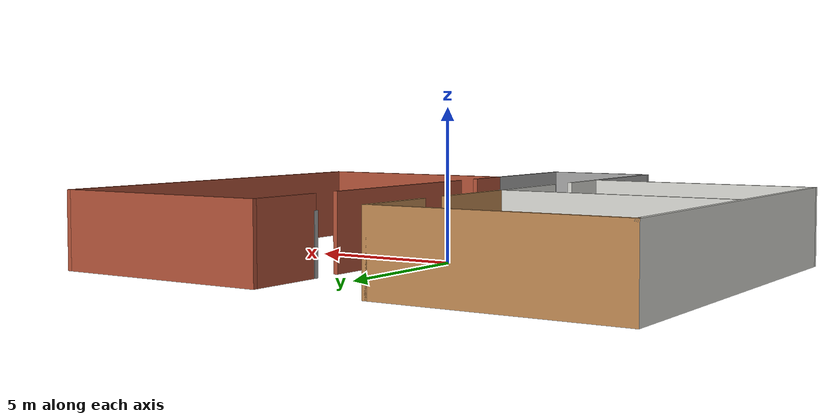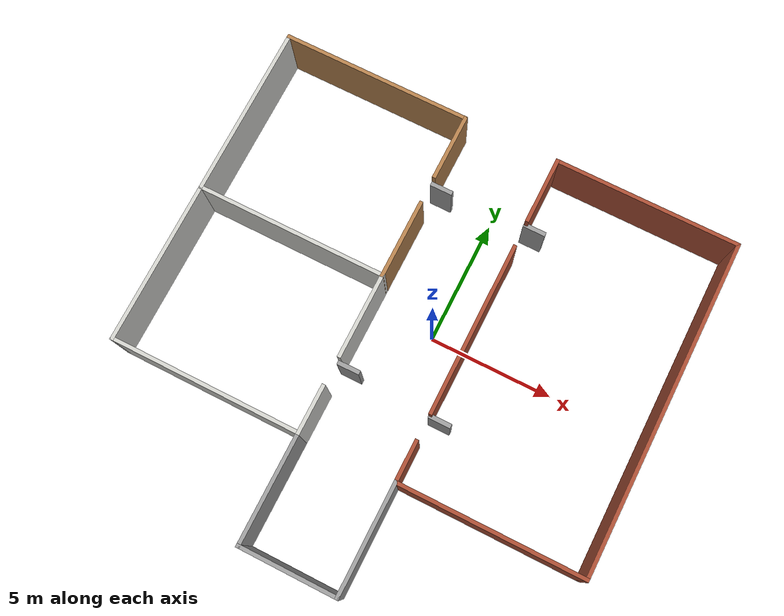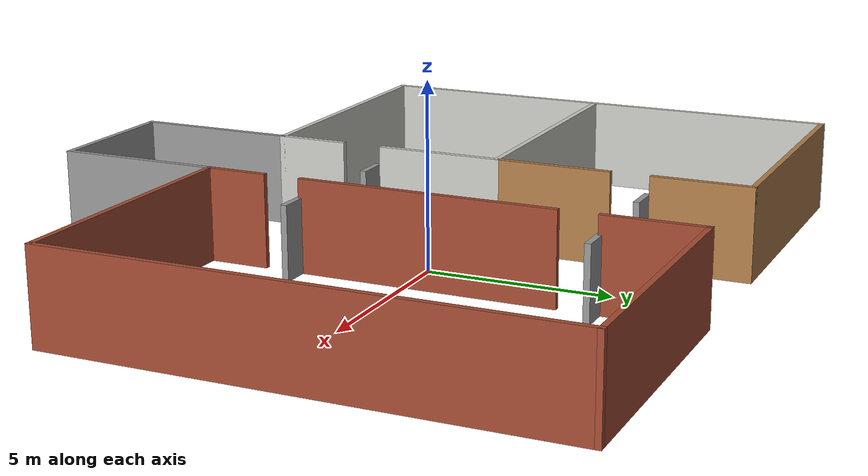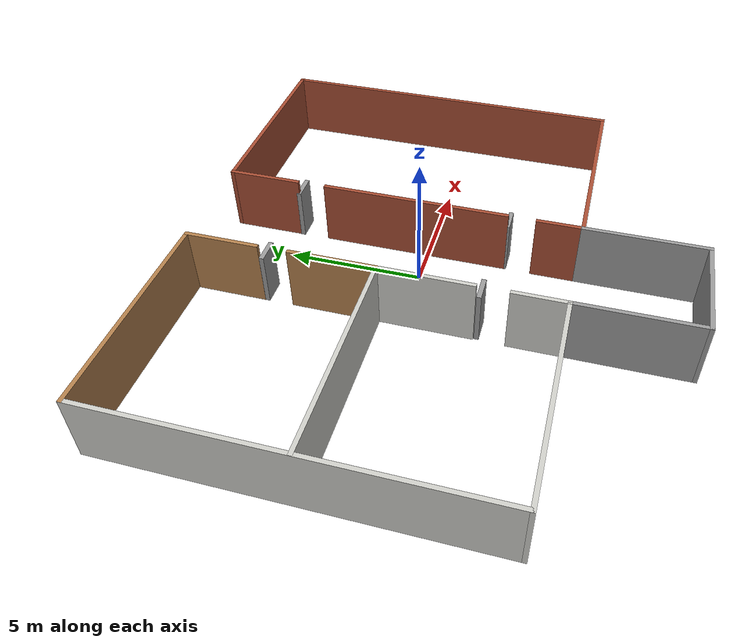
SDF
<?xml version='1.0'?>
<sdf version='1.6'>
  <model name='SAGAT_test'>
    <pose frame=''>-0.673508 -1.10219 0 0 -0 0</pose>
    <link name='Door_0'>
      <collision name='Door_0_Collision'>
        <geometry>
          <box>
            <size>0.9 0.17 2</size>
          </box>
        </geometry>
        <pose frame=''>0 0 1 0 -0 0</pose>
      </collision>
      <visual name='Door_0_Visual'>
        <pose frame=''>0 0 1 0 -0 0</pose>
        <geometry>
          <box>
            <size>0.9 0.17 2</size>
          </box>
        </geometry>
        <material>
          <script>
            <uri>file://media/materials/scripts/gazebo.material</uri>
            <name>Gazebo/Grey</name>
          </script>
        </material>
      </visual>
      <pose frame=''>-1.37072 -1.57315 0 0 -0 0</pose>
    </link>
    <link name='Door_2'>
      <collision name='Door_2_Collision'>
        <geometry>
          <box>
            <size>0.9 0.17 2</size>
          </box>
        </geometry>
        <pose frame=''>0 0 1 0 -0 0</pose>
      </collision>
      <visual name='Door_2_Visual'>
        <pose frame=''>0 0 1 0 -0 0</pose>
        <geometry>
          <box>
            <size>0.9 0.17 2</size>
          </box>
        </geometry>
        <material>
          <script>
            <uri>file://media/materials/scripts/gazebo.material</uri>
            <name>Gazebo/Grey</name>
          </script>
        </material>
      </visual>
      <pose frame=''>-1.42262 6.09162 0 0 -0 0</pose>
    </link>
    <link name='Door_4'>
      <collision name='Door_4_Collision'>
        <geometry>
          <box>
            <size>0.9 0.17 2</size>
          </box>
        </geometry>
        <pose frame=''>0 0 1 0 -0 0</pose>
      </collision>
      <visual name='Door_4_Visual'>
        <pose frame=''>0 0 1 0 -0 0</pose>
        <geometry>
          <box>
            <size>0.9 0.17 2</size>
          </box>
        </geometry>
        <material>
          <script>
            <uri>file://media/materials/scripts/gazebo.material</uri>
            <name>Gazebo/Grey</name>
          </script>
        </material>
      </visual>
      <pose frame=''>2.44918 -1.82865 0 0 -0 0</pose>
    </link>
    <link name='Door_5'>
      <collision name='Door_5_Collision'>
        <geometry>
          <box>
            <size>0.9 0.17 2</size>
          </box>
        </geometry>
        <pose frame=''>0 0 1 0 -0 0</pose>
      </collision>
      <visual name='Door_5_Visual'>
        <pose frame=''>0 0 1 0 -0 0</pose>
        <geometry>
          <box>
            <size>0.9 0.17 2</size>
          </box>
        </geometry>
        <material>
          <script>
            <uri>file://media/materials/scripts/gazebo.material</uri>
            <name>Gazebo/Grey</name>
          </script>
        </material>
      </visual>
      <pose frame=''>2.41138 6.19081 0 0 -0 0</pose>
    </link>
    <link name='Wall_0'>
      <collision name='Wall_0_Collision'>
        <geometry>
          <box>
            <size>4 0.15 2.5</size>
          </box>
        </geometry>
        <pose frame=''>0 0 1.25 0 -0 0</pose>
      </collision>
      <visual name='Wall_0_Visual'>
        <pose frame=''>0 0 1.25 0 -0 0</pose>
        <geometry>
          <box>
            <size>4 0.15 2.5</size>
          </box>
        </geometry>
        <material>
          <script>
            <uri>file://media/materials/scripts/gazebo.material</uri>
            <name>Gazebo/Grey</name>
          </script>
          <ambient>1 1 1 1</ambient>
        </material>
      </visual>
      <pose frame=''>0.125 -8.85 0 0 -0 0</pose>
    </link>
    <link name='Wall_11'>
      <collision name='Wall_11_Collision'>
        <geometry>
          <box>
            <size>7.5 0.15 2.5</size>
          </box>
        </geometry>
        <pose frame=''>0 0 1.25 0 -0 0</pose>
      </collision>
      <visual name='Wall_11_Visual'>
        <pose frame=''>0 0 1.25 0 -0 0</pose>
        <geometry>
          <box>
            <size>7.5 0.15 2.5</size>
          </box>
        </geometry>
        <material>
          <script>
            <uri>file://media/materials/scripts/gazebo.material</uri>
            <name>Gazebo/Bricks</name>
          </script>
          <ambient>1 1 1 1</ambient>
        </material>
      </visual>
      <pose frame=''>5.725 -4.5 0 0 -0 0</pose>
    </link>
    <link name='Wall_14'>
      <collision name='Wall_14_Collision'>
        <geometry>
          <box>
            <size>13.5 0.15 2.5</size>
          </box>
        </geometry>
        <pose frame=''>0 0 1.25 0 -0 0</pose>
      </collision>
      <visual name='Wall_14_Visual'>
        <pose frame=''>0 0 1.25 0 -0 0</pose>
        <geometry>
          <box>
            <size>13.5 0.15 2.5</size>
          </box>
        </geometry>
        <material>
          <script>
            <uri>file://media/materials/scripts/gazebo.material</uri>
            <name>Gazebo/Bricks</name>
          </script>
          <ambient>1 1 1 1</ambient>
        </material>
      </visual>
      <pose frame=''>9.4 2.175 0 0 -0 1.5708</pose>
    </link>
    <link name='Wall_16'>
      <collision name='Wall_16_Collision'>
        <geometry>
          <box>
            <size>7.5 0.15 2.5</size>
          </box>
        </geometry>
        <pose frame=''>0 0 1.25 0 -0 0</pose>
      </collision>
      <visual name='Wall_16_Visual'>
        <pose frame=''>0 0 1.25 0 -0 0</pose>
        <geometry>
          <box>
            <size>7.5 0.15 2.5</size>
          </box>
        </geometry>
        <material>
          <script>
            <uri>file://media/materials/scripts/gazebo.material</uri>
            <name>Gazebo/Bricks</name>
          </script>
          <ambient>1 1 1 1</ambient>
        </material>
      </visual>
      <pose frame=''>5.725 8.85 0 0 -0 3.14159</pose>
    </link>
    <link name='Wall_2'>
      <collision name='Wall_2_Collision'>
        <geometry>
          <box>
            <size>4.5 0.15 2.5</size>
          </box>
        </geometry>
        <pose frame=''>0 0 1.25 0 -0 0</pose>
      </collision>
      <visual name='Wall_2_Visual'>
        <pose frame=''>0 0 1.25 0 -0 0</pose>
        <geometry>
          <box>
            <size>4.5 0.15 2.5</size>
          </box>
        </geometry>
        <material>
          <script>
            <uri>file://media/materials/scripts/gazebo.material</uri>
            <name>Gazebo/Grey</name>
          </script>
          <ambient>1 1 1 1</ambient>
        </material>
      </visual>
      <pose frame=''>-1.8 -6.675 0 0 -0 1.5708</pose>
    </link>
    <link name='Wall_20'>
      <collision name='Wall_20_Collision'>
        <geometry>
          <box>
            <size>7.75 0.15 2.5</size>
          </box>
        </geometry>
        <pose frame=''>0 0 1.25 0 -0 0</pose>
      </collision>
      <visual name='Wall_20_Visual'>
        <pose frame=''>0 0 1.25 0 -0 0</pose>
        <geometry>
          <box>
            <size>7.75 0.15 2.5</size>
          </box>
        </geometry>
        <material>
          <script>
            <uri>file://media/materials/scripts/gazebo.material</uri>
            <name>Gazebo/CeilingTiled</name>
          </script>
          <ambient>1 1 1 1</ambient>
        </material>
      </visual>
      <pose frame=''>-5.58776 1.95338 0 0 -0 0</pose>
    </link>
    <link name='Wall_22'>
      <collision name='Wall_22_Collision'>
        <geometry>
          <box>
            <size>7.75 0.15 2.5</size>
          </box>
        </geometry>
        <pose frame=''>0 0 1.25 0 -0 0</pose>
      </collision>
      <visual name='Wall_22_Visual'>
        <pose frame=''>0 0 1.25 0 -0 0</pose>
        <geometry>
          <box>
            <size>7.75 0.15 2.5</size>
          </box>
        </geometry>
        <material>
          <script>
            <uri>file://media/materials/scripts/gazebo.material</uri>
            <name>Gazebo/Wood</name>
          </script>
          <ambient>1 1 1 1</ambient>
        </material>
      </visual>
      <pose frame=''>-5.6 8.85 0 0 -0 0</pose>
    </link>
    <link name='Wall_28'>
      <collision name='Wall_28_Collision'>
        <geometry>
          <box>
            <size>2.75 0.15 2.5</size>
          </box>
        </geometry>
        <pose frame=''>0 0 1.25 0 -0 0</pose>
      </collision>
      <visual name='Wall_28_Visual'>
        <pose frame=''>0 0 1.25 0 -0 0</pose>
        <geometry>
          <box>
            <size>2.75 0.15 2.5</size>
          </box>
        </geometry>
        <material>
          <script>
            <uri>file://media/materials/scripts/gazebo.material</uri>
            <name>Gazebo/Wood</name>
          </script>
          <ambient>1 1 1 1</ambient>
        </material>
      </visual>
      <pose frame=''>-1.8 7.55 0 0 0 -1.5708</pose>
    </link>
    <link name='Wall_30'>
      <collision name='Wall_30_Collision'>
        <geometry>
          <box>
            <size>3.25 0.15 2.5</size>
          </box>
        </geometry>
        <pose frame=''>0 0 1.25 0 -0 0</pose>
      </collision>
      <visual name='Wall_30_Visual'>
        <pose frame=''>0 0 1.25 0 -0 0</pose>
        <geometry>
          <box>
            <size>3.25 0.15 2.5</size>
          </box>
        </geometry>
        <material>
          <script>
            <uri>file://media/materials/scripts/gazebo.material</uri>
            <name>Gazebo/Wood</name>
          </script>
          <ambient>1 1 1 1</ambient>
        </material>
      </visual>
      <pose frame=''>-1.78776 3.50338 0 0 -0 1.5708</pose>
    </link>
    <link name='Wall_34'>
      <collision name='Wall_34_Collision'>
        <geometry>
          <box>
            <size>3.5 0.15 2.5</size>
          </box>
        </geometry>
        <pose frame=''>0 0 1.25 0 -0 0</pose>
      </collision>
      <visual name='Wall_34_Visual'>
        <pose frame=''>0 0 1.25 0 -0 0</pose>
        <geometry>
          <box>
            <size>3.5 0.15 2.5</size>
          </box>
        </geometry>
        <material>
          <script>
            <uri>file://media/materials/scripts/gazebo.material</uri>
            <name>Gazebo/CeilingTiled</name>
          </script>
          <ambient>1 1 1 1</ambient>
        </material>
      </visual>
      <pose frame=''>-1.78776 0.278382 0 0 0 -1.5708</pose>
    </link>
    <link name='Wall_36'>
      <collision name='Wall_36_Collision'>
        <geometry>
          <box>
            <size>2 0.15 2.5</size>
          </box>
        </geometry>
        <pose frame=''>0 0 1.25 0 -0 0</pose>
      </collision>
      <visual name='Wall_36_Visual'>
        <pose frame=''>0 0 1.25 0 -0 0</pose>
        <geometry>
          <box>
            <size>2 0.15 2.5</size>
          </box>
        </geometry>
        <material>
          <script>
            <uri>file://media/materials/scripts/gazebo.material</uri>
            <name>Gazebo/CeilingTiled</name>
          </script>
          <ambient>1 1 1 1</ambient>
        </material>
      </visual>
      <pose frame=''>-1.8 -3.575 0 0 -0 1.5708</pose>
    </link>
    <link name='Wall_38'>
      <collision name='Wall_38_Collision'>
        <geometry>
          <box>
            <size>1.75 0.15 2.5</size>
          </box>
        </geometry>
        <pose frame=''>0 0 1.25 0 -0 0</pose>
      </collision>
      <visual name='Wall_38_Visual'>
        <pose frame=''>0 0 1.25 0 -0 0</pose>
        <geometry>
          <box>
            <size>1.75 0.15 2.5</size>
          </box>
        </geometry>
        <material>
          <script>
            <uri>file://media/materials/scripts/gazebo.material</uri>
            <name>Gazebo/Bricks</name>
          </script>
          <ambient>1 1 1 1</ambient>
        </material>
      </visual>
      <pose frame=''>2.05 -3.7 0 0 -0 1.5708</pose>
    </link>
    <link name='Wall_4'>
      <collision name='Wall_4_Collision'>
        <geometry>
          <box>
            <size>4.5 0.15 2.5</size>
          </box>
        </geometry>
        <pose frame=''>0 0 1.25 0 -0 0</pose>
      </collision>
      <visual name='Wall_4_Visual'>
        <pose frame=''>0 0 1.25 0 -0 0</pose>
        <geometry>
          <box>
            <size>4.5 0.15 2.5</size>
          </box>
        </geometry>
        <material>
          <script>
            <uri>file://media/materials/scripts/gazebo.material</uri>
            <name>Gazebo/Grey</name>
          </script>
          <ambient>1 1 1 1</ambient>
        </material>
      </visual>
      <pose frame=''>2.05 -6.675 0 0 -0 1.5708</pose>
    </link>
    <link name='Wall_40'>
      <collision name='Wall_40_Collision'>
        <geometry>
          <box>
            <size>7 0.15 2.5</size>
          </box>
        </geometry>
        <pose frame=''>0 0 1.25 0 -0 0</pose>
      </collision>
      <visual name='Wall_40_Visual'>
        <pose frame=''>0 0 1.25 0 -0 0</pose>
        <geometry>
          <box>
            <size>7 0.15 2.5</size>
          </box>
        </geometry>
        <material>
          <script>
            <uri>file://media/materials/scripts/gazebo.material</uri>
            <name>Gazebo/Bricks</name>
          </script>
          <ambient>1 1 1 1</ambient>
        </material>
      </visual>
      <pose frame=''>2.06254 1.65917 0 0 -0 1.5708</pose>
    </link>
    <link name='Wall_44'>
      <collision name='Wall_44_Collision'>
        <geometry>
          <box>
            <size>2.75 0.15 2.5</size>
          </box>
        </geometry>
        <pose frame=''>0 0 1.25 0 -0 0</pose>
      </collision>
      <visual name='Wall_44_Visual'>
        <pose frame=''>0 0 1.25 0 -0 0</pose>
        <geometry>
          <box>
            <size>2.75 0.15 2.5</size>
          </box>
        </geometry>
        <material>
          <script>
            <uri>file://media/materials/scripts/gazebo.material</uri>
            <name>Gazebo/Bricks</name>
          </script>
          <ambient>1 1 1 1</ambient>
        </material>
      </visual>
      <pose frame=''>2.05 7.55 0 0 0 -1.5708</pose>
    </link>
    <link name='Wall_6'>
      <collision name='Wall_6_Collision'>
        <geometry>
          <box>
            <size>7.75 0.15 2.5</size>
          </box>
        </geometry>
        <pose frame=''>0 0 1.25 0 -0 0</pose>
      </collision>
      <visual name='Wall_6_Visual'>
        <pose frame=''>0 0 1.25 0 -0 0</pose>
        <geometry>
          <box>
            <size>7.75 0.15 2.5</size>
          </box>
        </geometry>
        <material>
          <script>
            <uri>file://media/materials/scripts/gazebo.material</uri>
            <name>Gazebo/CeilingTiled</name>
          </script>
          <ambient>1 1 1 1</ambient>
        </material>
      </visual>
      <pose frame=''>-5.6 -4.5 0 0 -0 3.14159</pose>
    </link>
    <link name='Wall_7'>
      <collision name='Wall_7_Collision'>
        <geometry>
          <box>
            <size>13.5 0.15 2.5</size>
          </box>
        </geometry>
        <pose frame=''>0 0 1.25 0 -0 0</pose>
      </collision>
      <visual name='Wall_7_Visual'>
        <pose frame=''>0 0 1.25 0 -0 0</pose>
        <geometry>
          <box>
            <size>13.5 0.15 2.5</size>
          </box>
        </geometry>
        <material>
          <script>
            <uri>file://media/materials/scripts/gazebo.material</uri>
            <name>Gazebo/CeilingTiled</name>
          </script>
          <ambient>1 1 1 1</ambient>
        </material>
      </visual>
      <pose frame=''>-9.4 2.175 0 0 -0 1.5708</pose>
    </link>
    <static>1</static>
  </model>
</sdf>
